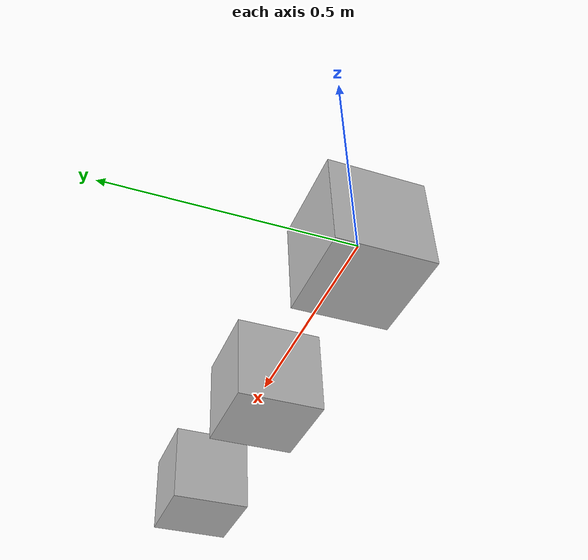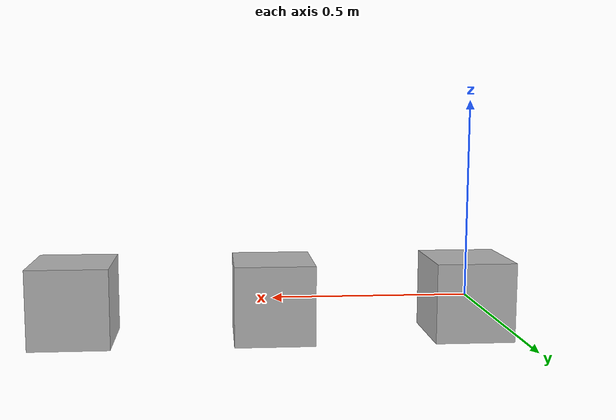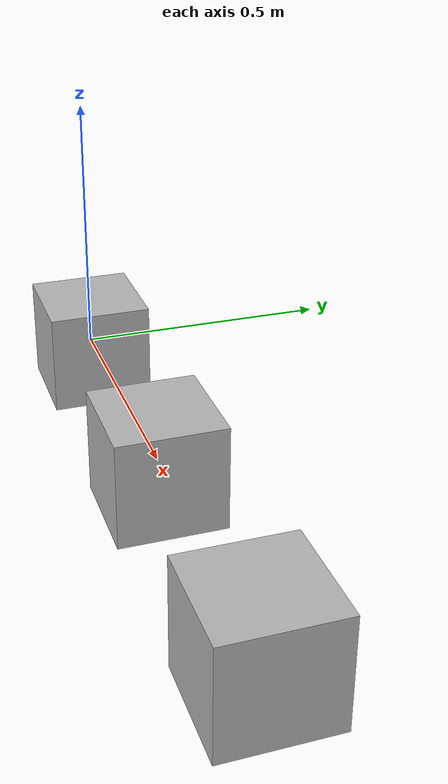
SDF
<sdf version='1.7'>
  <model name='mck'>
    <joint name='fixed' type='fixed'>
      <pose relative_to='__model__'>0 0 0 0 -0 0</pose>
      <parent>world</parent>
      <child>base_link</child>
    </joint>
    <link name='base_link'>
      <pose relative_to='fixed'>0 0 0 0 -0 0</pose>
      <inertial>
        <pose>0 0 0 0 -0 0</pose>
        <mass>1</mass>
        <inertia>
          <ixx>0.1</ixx>
          <ixy>0</ixy>
          <ixz>0</ixz>
          <iyy>0.1</iyy>
          <iyz>0</iyz>
          <izz>0.1</izz>
        </inertia>
      </inertial>
      <collision name='base_link_collision'>
        <pose>0 0 0 0 -0 0</pose>
        <geometry>
          <box>
            <size>0.2 0.2 0.2</size>
          </box>
        </geometry>
      </collision>
      <visual name='base_link_visual'>
        <pose>0 0 0 0 -0 0</pose>
        <geometry>
          <box>
            <size>0.2 0.2 0.2</size>
          </box>
        </geometry>
      </visual>
    </link>
    <joint name='first_spring_damper' type='prismatic'>
      <pose relative_to='base_link'>0.5 0 0 0 -0 0</pose>
      <parent>base_link</parent>
      <child>link_1</child>
      <axis>
        <xyz>1 0 0</xyz>
        <limit>
          <lower>-10</lower>
          <upper>10</upper>
          <effort>10000</effort>
          <velocity>5</velocity>
        </limit>
        <dynamics>
          <damping>0.5</damping>
          <friction>0</friction>
          <spring_reference>0.2</spring_reference>
          <spring_stiffness>10</spring_stiffness>
        </dynamics>
      </axis>
    </joint>
    <link name='link_1'>
      <pose relative_to='first_spring_damper'>0 0 0 0 -0 0</pose>
      <inertial>
        <pose>0 0 0 0 -0 0</pose>
        <mass>1</mass>
        <inertia>
          <ixx>0.1</ixx>
          <ixy>0</ixy>
          <ixz>0</ixz>
          <iyy>0.1</iyy>
          <iyz>0</iyz>
          <izz>0.1</izz>
        </inertia>
      </inertial>
      <collision name='link_1_collision'>
        <pose>0 0 0 0 -0 0</pose>
        <geometry>
          <box>
            <size>0.2 0.2 0.2</size>
          </box>
        </geometry>
      </collision>
      <visual name='link_1_visual'>
        <pose>0 0 0 0 -0 0</pose>
        <geometry>
          <box>
            <size>0.2 0.2 0.2</size>
          </box>
        </geometry>
      </visual>
    </link>
    <joint name='second_spring_damper' type='prismatic'>
      <pose relative_to='link_1'>0.5 0 0 0 -0 0</pose>
      <parent>link_1</parent>
      <child>link_2</child>
      <axis>
        <xyz>1 0 0</xyz>
        <limit>
          <lower>-10</lower>
          <upper>10</upper>
          <effort>10000</effort>
          <velocity>5</velocity>
        </limit>
        <dynamics>
          <damping>0.5</damping>
          <friction>0</friction>
          <spring_reference>0.2</spring_reference>
          <spring_stiffness>20</spring_stiffness>
        </dynamics>
      </axis>
    </joint>
    <link name='link_2'>
      <pose relative_to='second_spring_damper'>0 0 0 0 -0 0</pose>
      <inertial>
        <pose>0 0 0 0 -0 0</pose>
        <mass>1</mass>
        <inertia>
          <ixx>0.1</ixx>
          <ixy>0</ixy>
          <ixz>0</ixz>
          <iyy>0.1</iyy>
          <iyz>0</iyz>
          <izz>0.1</izz>
        </inertia>
      </inertial>
      <collision name='link_2_collision'>
        <pose>0 0 0 0 -0 0</pose>
        <geometry>
          <box>
            <size>0.2 0.2 0.2</size>
          </box>
        </geometry>
      </collision>
      <visual name='link_2_visual'>
        <pose>0 0 0 0 -0 0</pose>
        <geometry>
          <box>
            <size>0.2 0.2 0.2</size>
          </box>
        </geometry>
      </visual>
    </link>
  </model>
</sdf>
